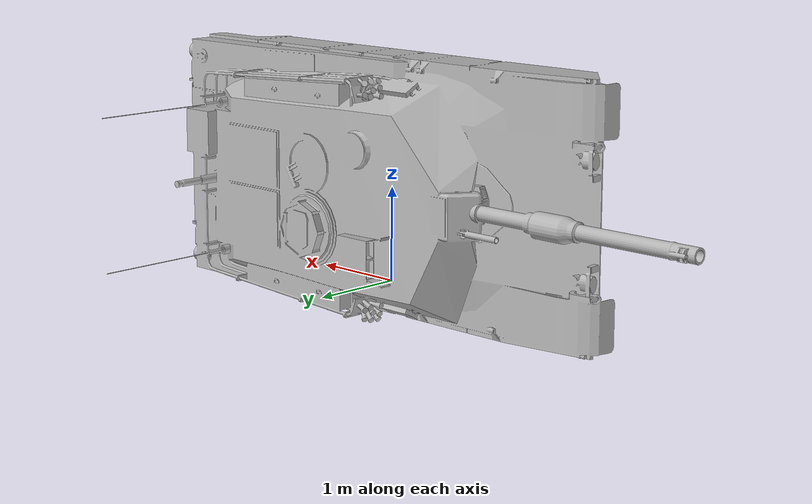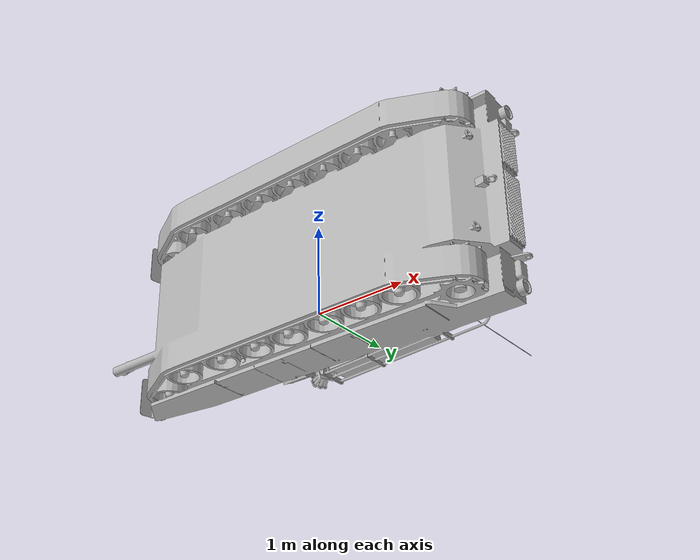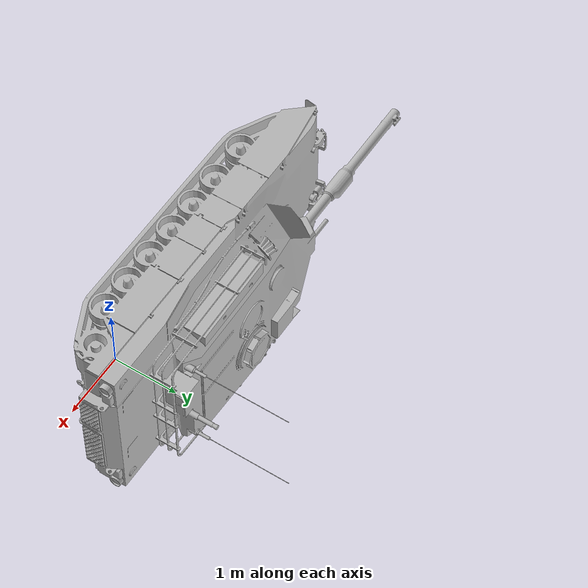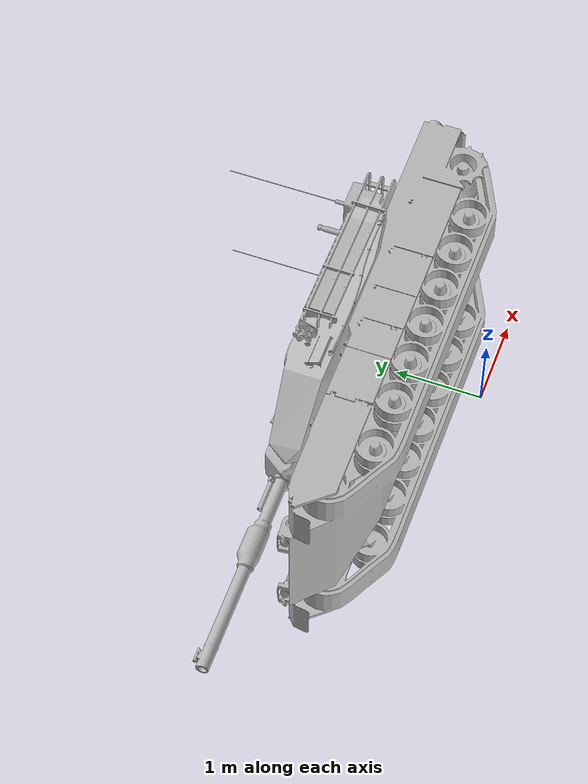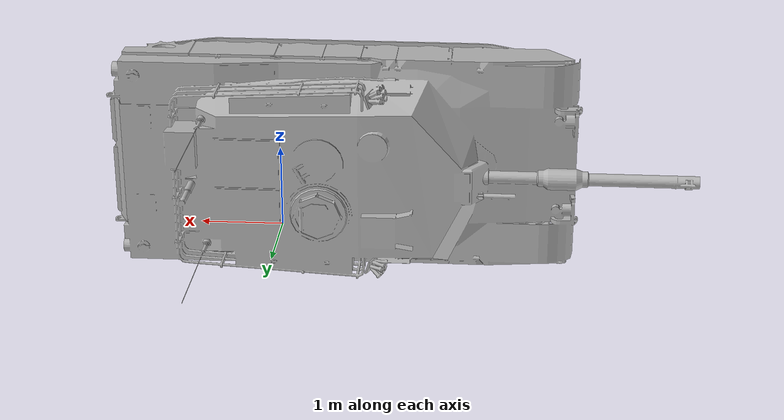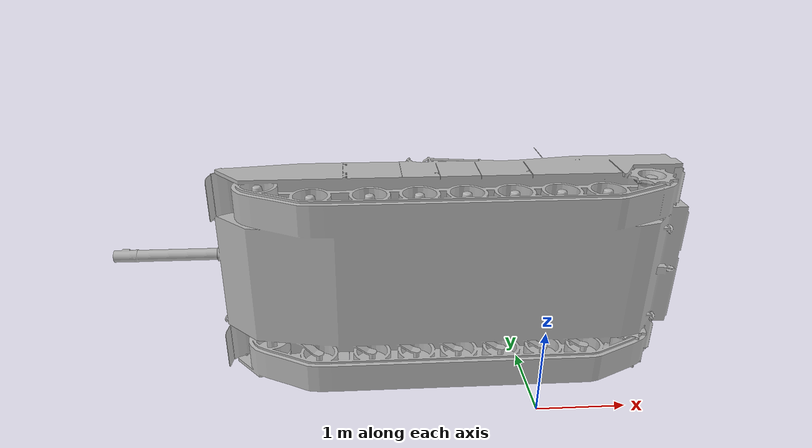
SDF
<?xml version="1.0" ?>
<sdf version="1.9">
  <model name="m1-abrams">
    <static>true</static>
    <link name="body">

      <visual name="visual">
        <pose>0 0 -0.2 0 0 0</pose>
        <geometry>
          <mesh>
            <uri>model://m1-abrams/meshes/abrams.obj</uri>
            <scale>1 1 1</scale>
          </mesh>
        </geometry>
      </visual>

      <collision name="hull_collision">
        <pose>0 0 0.8 0 0 0</pose>
        <geometry><box><size>6.6 3.0 1.4</size></box></geometry>
      </collision>
      <collision name="turret_collision">
        <pose>-0.5 0 1.9 0 0 0</pose>
        <geometry><box><size>3.4 2.6 0.9</size></box></geometry>
      </collision>

    </link>
  </model>
</sdf>
